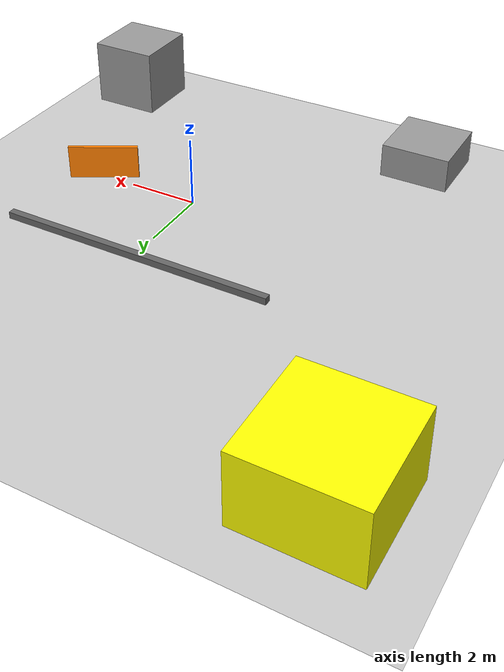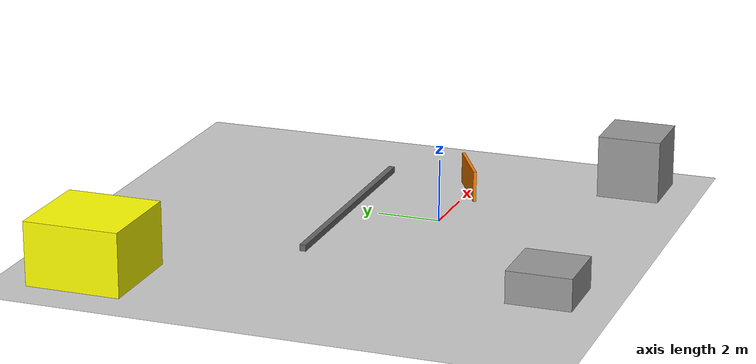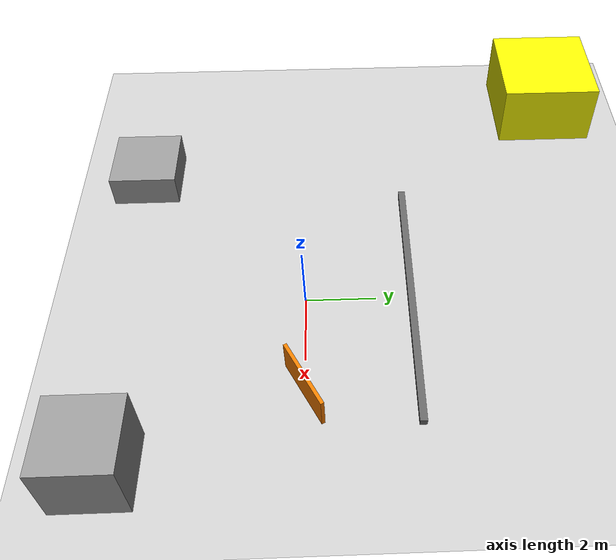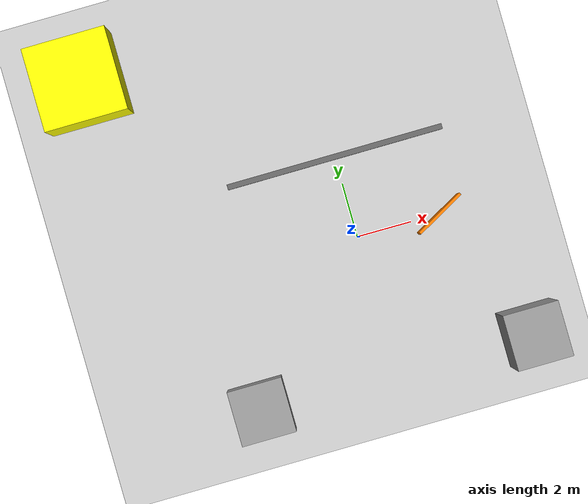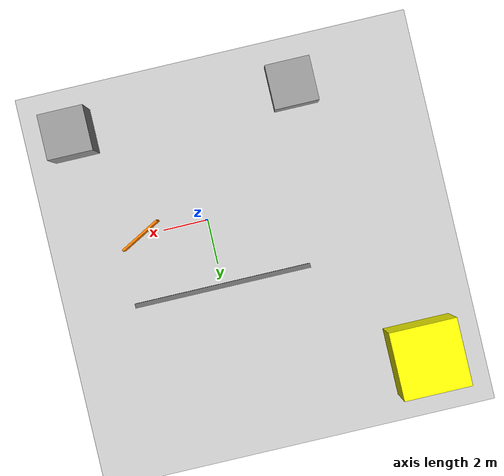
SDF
<?xml version="1.0" ?>
<sdf version="1.6">
  <world name="construction_site">
    <include>
      <uri>model://sun</uri>
    </include>
    <include>
      <uri>model://ground_plane</uri>
    </include>

    <!-- Construction materials -->
    <model name="concrete_block1">
      <static>true</static>
      <pose>-5 -5 0.5 0 0 0</pose>
      <link name="link">
        <collision name="collision">
          <geometry>
            <box>
              <size>2 2 1</size>
            </box>
          </geometry>
        </collision>
        <visual name="visual">
          <geometry>
            <box>
              <size>2 2 1</size>
            </box>
          </geometry>
          <material>
            <ambient>0.6 0.6 0.6 1</ambient>
          </material>
        </visual>
      </link>
    </model>

    <model name="concrete_block2">
      <static>true</static>
      <pose>5 -5 1 0 0 0</pose>
      <link name="link">
        <collision name="collision">
          <geometry>
            <box>
              <size>2 2 2</size>
            </box>
          </geometry>
        </collision>
        <visual name="visual">
          <geometry>
            <box>
              <size>2 2 2</size>
            </box>
          </geometry>
          <material>
            <ambient>0.6 0.6 0.6 1</ambient>
          </material>
        </visual>
      </link>
    </model>

    <!-- Steel beams -->
    <model name="steel_beam1">
      <static>true</static>
      <pose>0 3 0.1 0 0 0</pose>
      <link name="link">
        <collision name="collision">
          <geometry>
            <box>
              <size>8 0.2 0.2</size>
            </box>
          </geometry>
        </collision>
        <visual name="visual">
          <geometry>
            <box>
              <size>8 0.2 0.2</size>
            </box>
          </geometry>
          <material>
            <ambient>0.4 0.4 0.4 1</ambient>
          </material>
        </visual>
      </link>
    </model>

    <!-- Construction barriers -->
    <model name="barrier1">
      <static>true</static>
      <pose>3 0 0.5 0 0 0.5</pose>
      <link name="link">
        <collision name="collision">
          <geometry>
            <box>
              <size>2 0.1 1</size>
            </box>
          </geometry>
        </collision>
        <visual name="visual">
          <geometry>
            <box>
              <size>2 0.1 1</size>
            </box>
          </geometry>
          <material>
            <ambient>1 0.5 0 1</ambient>
          </material>
        </visual>
      </link>
    </model>

    <!-- Construction crane base -->
    <model name="crane_base">
      <static>true</static>
      <pose>-8 8 1 0 0 0</pose>
      <link name="link">
        <collision name="collision">
          <geometry>
            <box>
              <size>3 3 2</size>
            </box>
          </geometry>
        </collision>
        <visual name="visual">
          <geometry>
            <box>
              <size>3 3 2</size>
            </box>
          </geometry>
          <material>
            <ambient>1 1 0 1</ambient>
          </material>
        </visual>
      </link>
    </model>

  </world>
</sdf>
